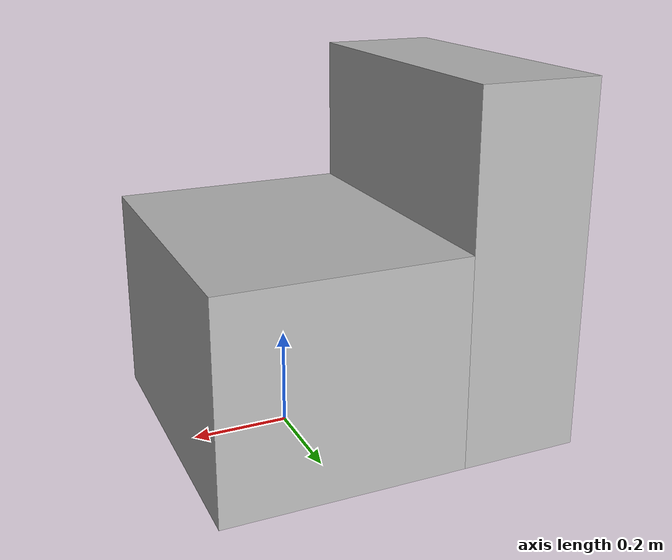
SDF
<?xml version="1.0"?>
<sdf version="1.6">
  <model name="rwc2019/armchair">
    <link name="1_link">
      <collision name="1_col">
        <geometry>
          <box>
            <size>0.5 0.66 0.44</size>
          </box>
        </geometry>
      </collision>
      <visual name="1_vis">
        <geometry>
          <box>
            <size>0.5 0.66 0.44</size>
          </box>
        </geometry>
      </visual>
      <pose>0.0 0.0 0.22 0 0 0</pose>
    </link>
    <link name="back">
      <collision name="back_col">
        <geometry>
          <box>
            <size>0.25 0.66 0.75</size>
          </box>
        </geometry>
      </collision>
      <visual name="back_vis">
        <geometry>
          <box>
            <size>0.25 0.66 0.75</size>
          </box>
        </geometry>
      </visual>
      <pose>-0.375 0.0 0.375 0 0 0</pose>
    </link>
    <link name="on_top_of">
      <virtual_volume name="on_top_of_vv">
        <geometry>
          <box>
            <size>0.46 0.6 0.25</size>
          </box>
        </geometry>
        <pose>0.02 0.0 0.685 0 0 0</pose>
      </virtual_volume>
    </link>
    <link name="in_front_of">
      <virtual_volume name="in_front_of_vv">
        <geometry>
          <box>
            <size>0.2 0.46 0.01</size>
          </box>
        </geometry>
        <pose>0.75 0.0 0.005 0 0 0</pose>
      </virtual_volume>
    </link>
    <static>true</static>
  </model>
</sdf>
